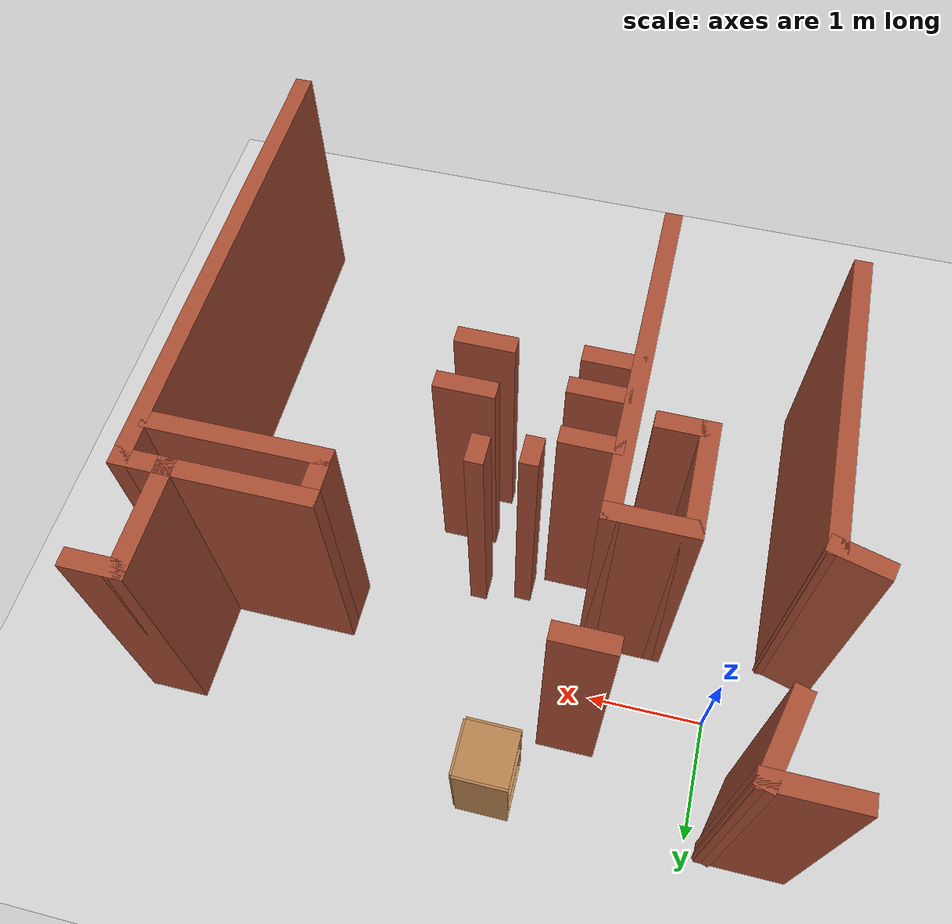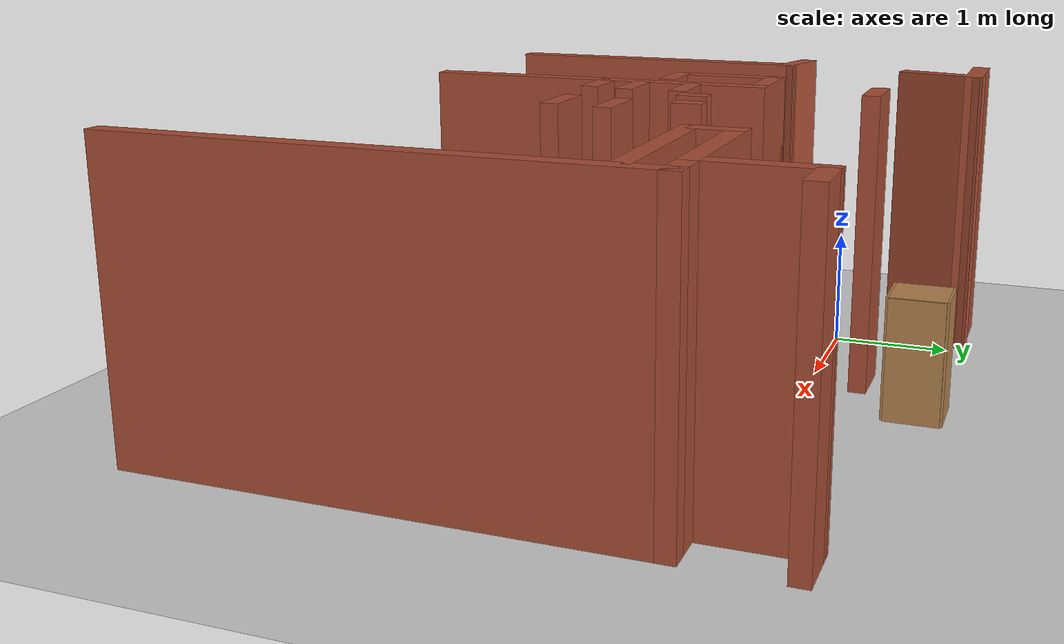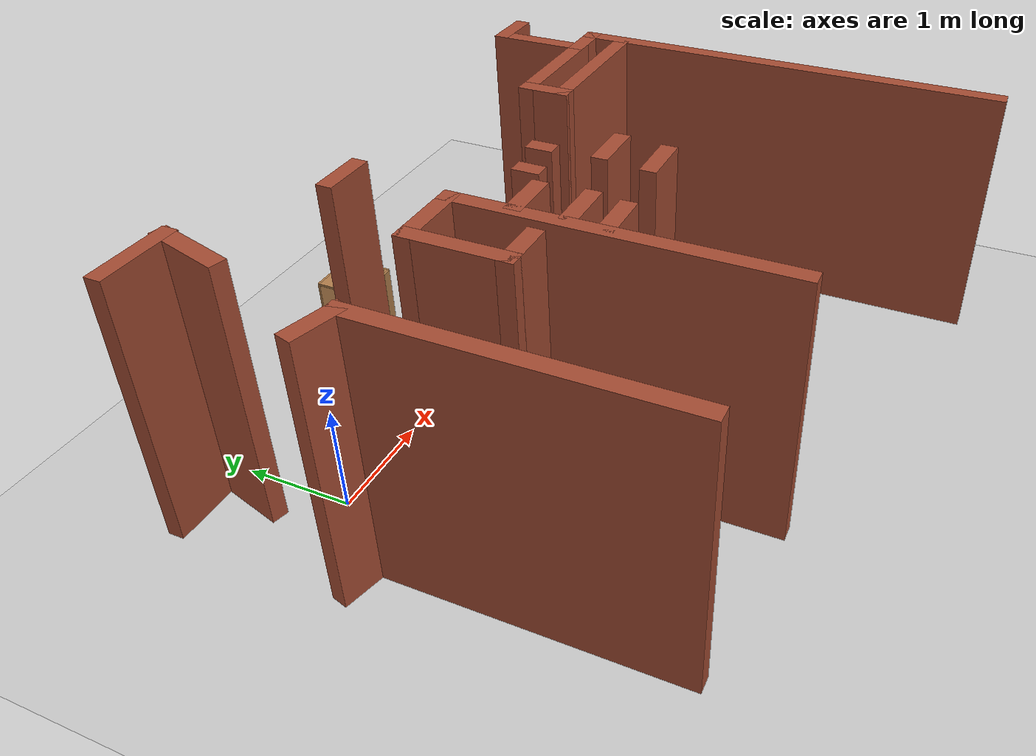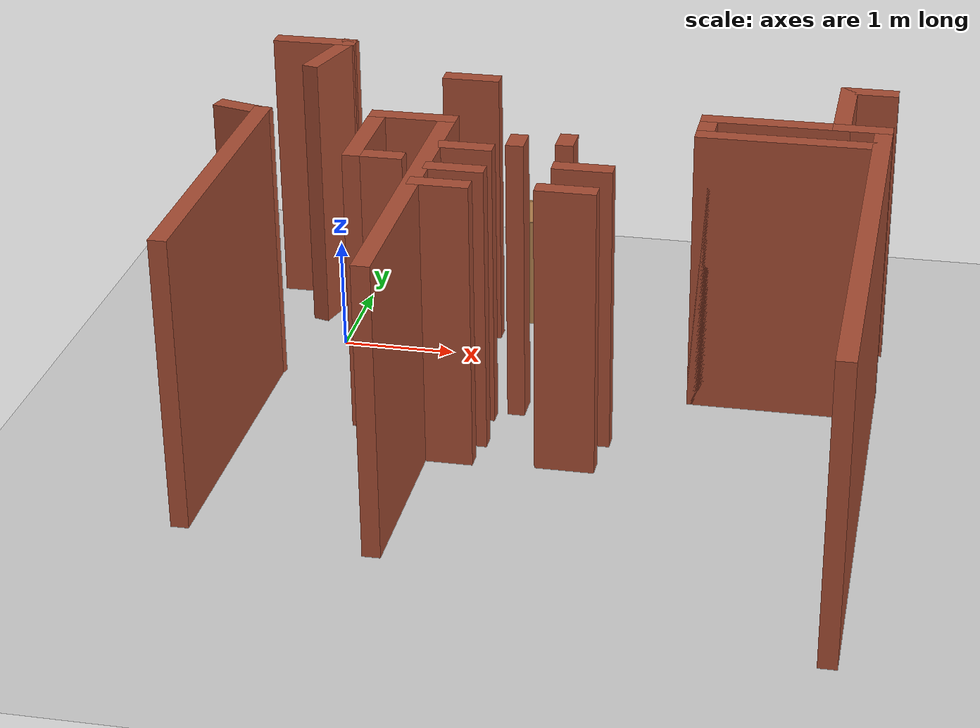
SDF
<sdf version="1.6">
 <world name="default">
  <model name="ground_plane">
   <static>1</static>
   <link name="link">
    <collision name="collision">
     <geometry><plane><normal>0 0 1</normal><size>100 100</size></plane></geometry>
     <surface><friction><ode><mu>100</mu><mu2>50</mu2></ode></friction></surface>
    </collision>
    <visual name="visual">
     <cast_shadows>0</cast_shadows>
     <geometry><plane><normal>0 0 1</normal><size>100 100</size></plane></geometry>
     <material>
      <script><uri>file://media/materials/scripts/gazebo.material</uri><name>Gazebo/Grey</name></script>
     </material>
    </visual>
   </link>
  </model>
  <model name="map_45">
   <link name="Wall_111">
    <pose>-0.040718 0.883638 0 0 -0 0</pose>
    <visual name="Wall_111_Visual">
     <pose>0 0 1.25 0 -0 0</pose>
     <geometry><box><size>0.75 0.15 2.5</size></box></geometry>
     <material>
      <script><uri>file://media/materials/scripts/gazebo.material</uri><name>Gazebo/Bricks</name></script>
      <ambient>1 1 1 1</ambient>
      <shader type="pixel"/>
     </material>
     <meta><layer>0</layer></meta>
    </visual>
    <collision name="Wall_111_Collision">
     <pose>0 0 1.25 0 -0 0</pose>
     <geometry><box><size>0.75 0.15 2.5</size></box></geometry>
     <surface>
      <friction>
       <ode><mu>1</mu><mu2>1</mu2><fdir1>0 0 0</fdir1><slip1>0</slip1><slip2>0</slip2></ode>
       <torsional>
        <coefficient>1</coefficient>
        <patch_radius>0</patch_radius>
        <surface_radius>0</surface_radius>
        <use_patch_radius>1</use_patch_radius>
        <ode><slip>0</slip></ode>
       </torsional>
      </friction>
      <bounce><restitution_coefficient>0</restitution_coefficient><threshold>1e+06</threshold></bounce>
      <contact>
       <collide_without_contact>0</collide_without_contact>
       <collide_without_contact_bitmask>1</collide_without_contact_bitmask>
       <collide_bitmask>1</collide_bitmask>
       <ode>
        <soft_cfm>0</soft_cfm>
        <soft_erp>0.2</soft_erp>
        <kp>1e+13</kp>
        <kd>1</kd>
        <max_vel>0.01</max_vel>
        <min_depth>0</min_depth>
       </ode>
       <bullet>
        <split_impulse>1</split_impulse>
        <split_impulse_penetration_threshold>-0.01</split_impulse_penetration_threshold>
        <soft_cfm>0</soft_cfm>
        <soft_erp>0.2</soft_erp>
        <kp>1e+13</kp>
        <kd>1</kd>
       </bullet>
      </contact>
     </surface>
    </collision>
   </link>
   <link name="Wall_112">
    <pose>0.181636 0.593861 0 0 0 -1.8326</pose>
    <visual name="Wall_112_Visual">
     <pose>0 0 1.25 0 -0 0</pose>
     <geometry><box><size>0.75 0.15 2.5</size></box></geometry>
     <material>
      <script><uri>file://media/materials/scripts/gazebo.material</uri><name>Gazebo/Bricks</name></script>
      <ambient>1 1 1 1</ambient>
      <shader type="pixel"/>
     </material>
     <meta><layer>0</layer></meta>
    </visual>
    <collision name="Wall_112_Collision">
     <pose>0 0 1.25 0 -0 0</pose>
     <geometry><box><size>0.75 0.15 2.5</size></box></geometry>
     <surface>
      <friction>
       <ode><mu>1</mu><mu2>1</mu2><fdir1>0 0 0</fdir1><slip1>0</slip1><slip2>0</slip2></ode>
       <torsional>
        <coefficient>1</coefficient>
        <patch_radius>0</patch_radius>
        <surface_radius>0</surface_radius>
        <use_patch_radius>1</use_patch_radius>
        <ode><slip>0</slip></ode>
       </torsional>
      </friction>
      <bounce><restitution_coefficient>0</restitution_coefficient><threshold>1e+06</threshold></bounce>
      <contact>
       <collide_without_contact>0</collide_without_contact>
       <collide_without_contact_bitmask>1</collide_without_contact_bitmask>
       <collide_bitmask>1</collide_bitmask>
       <ode>
        <soft_cfm>0</soft_cfm>
        <soft_erp>0.2</soft_erp>
        <kp>1e+13</kp>
        <kd>1</kd>
        <max_vel>0.01</max_vel>
        <min_depth>0</min_depth>
       </ode>
       <bullet>
        <split_impulse>1</split_impulse>
        <split_impulse_penetration_threshold>-0.01</split_impulse_penetration_threshold>
        <soft_cfm>0</soft_cfm>
        <soft_erp>0.2</soft_erp>
        <kp>1e+13</kp>
        <kd>1</kd>
       </bullet>
      </contact>
     </surface>
    </collision>
   </link>
   <link name="Wall_130">
    <pose>4.25883 -0.34269 0 0 -0 3.14159</pose>
    <visual name="Wall_130_Visual">
     <pose>0 0 1.25 0 -0 0</pose>
     <geometry><box><size>1.25 0.15 2.5</size></box></geometry>
     <material>
      <script><uri>file://media/materials/scripts/gazebo.material</uri><name>Gazebo/Bricks</name></script>
      <ambient>1 1 1 1</ambient>
      <shader type="pixel"/>
     </material>
     <meta><layer>0</layer></meta>
    </visual>
    <collision name="Wall_130_Collision">
     <pose>0 0 1.25 0 -0 0</pose>
     <geometry><box><size>1.25 0.15 2.5</size></box></geometry>
     <surface>
      <friction>
       <ode><mu>1</mu><mu2>1</mu2><fdir1>0 0 0</fdir1><slip1>0</slip1><slip2>0</slip2></ode>
       <torsional>
        <coefficient>1</coefficient>
        <patch_radius>0</patch_radius>
        <surface_radius>0</surface_radius>
        <use_patch_radius>1</use_patch_radius>
        <ode><slip>0</slip></ode>
       </torsional>
      </friction>
      <bounce><restitution_coefficient>0</restitution_coefficient><threshold>1e+06</threshold></bounce>
      <contact>
       <collide_without_contact>0</collide_without_contact>
       <collide_without_contact_bitmask>1</collide_without_contact_bitmask>
       <collide_bitmask>1</collide_bitmask>
       <ode>
        <soft_cfm>0</soft_cfm>
        <soft_erp>0.2</soft_erp>
        <kp>1e+13</kp>
        <kd>1</kd>
        <max_vel>0.01</max_vel>
        <min_depth>0</min_depth>
       </ode>
       <bullet>
        <split_impulse>1</split_impulse>
        <split_impulse_penetration_threshold>-0.01</split_impulse_penetration_threshold>
        <soft_cfm>0</soft_cfm>
        <soft_erp>0.2</soft_erp>
        <kp>1e+13</kp>
        <kd>1</kd>
       </bullet>
      </contact>
     </surface>
    </collision>
   </link>
   <link name="Wall_131">
    <pose>3.70883 -0.51769 0 0 0 -1.5708</pose>
    <visual name="Wall_131_Visual">
     <pose>0 0 1.25 0 -0 0</pose>
     <geometry><box><size>0.5 0.15 2.5</size></box></geometry>
     <material>
      <script><uri>file://media/materials/scripts/gazebo.material</uri><name>Gazebo/Bricks</name></script>
      <ambient>1 1 1 1</ambient>
      <shader type="pixel"/>
     </material>
     <meta><layer>0</layer></meta>
    </visual>
    <collision name="Wall_131_Collision">
     <pose>0 0 1.25 0 -0 0</pose>
     <geometry><box><size>0.5 0.15 2.5</size></box></geometry>
     <surface>
      <friction>
       <ode><mu>1</mu><mu2>1</mu2><fdir1>0 0 0</fdir1><slip1>0</slip1><slip2>0</slip2></ode>
       <torsional>
        <coefficient>1</coefficient>
        <patch_radius>0</patch_radius>
        <surface_radius>0</surface_radius>
        <use_patch_radius>1</use_patch_radius>
        <ode><slip>0</slip></ode>
       </torsional>
      </friction>
      <bounce><restitution_coefficient>0</restitution_coefficient><threshold>1e+06</threshold></bounce>
      <contact>
       <collide_without_contact>0</collide_without_contact>
       <collide_without_contact_bitmask>1</collide_without_contact_bitmask>
       <collide_bitmask>1</collide_bitmask>
       <ode>
        <soft_cfm>0</soft_cfm>
        <soft_erp>0.2</soft_erp>
        <kp>1e+13</kp>
        <kd>1</kd>
        <max_vel>0.01</max_vel>
        <min_depth>0</min_depth>
       </ode>
       <bullet>
        <split_impulse>1</split_impulse>
        <split_impulse_penetration_threshold>-0.01</split_impulse_penetration_threshold>
        <soft_cfm>0</soft_cfm>
        <soft_erp>0.2</soft_erp>
        <kp>1e+13</kp>
        <kd>1</kd>
       </bullet>
      </contact>
     </surface>
    </collision>
   </link>
   <link name="Wall_132">
    <pose>4.38383 -0.69269 0 0 -0 0</pose>
    <visual name="Wall_132_Visual">
     <pose>0 0 1.25 0 -0 0</pose>
     <geometry><box><size>1.5 0.15 2.5</size></box></geometry>
     <material>
      <script><uri>file://media/materials/scripts/gazebo.material</uri><name>Gazebo/Bricks</name></script>
      <ambient>1 1 1 1</ambient>
      <shader type="pixel"/>
     </material>
     <meta><layer>0</layer></meta>
    </visual>
    <collision name="Wall_132_Collision">
     <pose>0 0 1.25 0 -0 0</pose>
     <geometry><box><size>1.5 0.15 2.5</size></box></geometry>
     <surface>
      <friction>
       <ode><mu>1</mu><mu2>1</mu2><fdir1>0 0 0</fdir1><slip1>0</slip1><slip2>0</slip2></ode>
       <torsional>
        <coefficient>1</coefficient>
        <patch_radius>0</patch_radius>
        <surface_radius>0</surface_radius>
        <use_patch_radius>1</use_patch_radius>
        <ode><slip>0</slip></ode>
       </torsional>
      </friction>
      <bounce><restitution_coefficient>0</restitution_coefficient><threshold>1e+06</threshold></bounce>
      <contact>
       <collide_without_contact>0</collide_without_contact>
       <collide_without_contact_bitmask>1</collide_without_contact_bitmask>
       <collide_bitmask>1</collide_bitmask>
       <ode>
        <soft_cfm>0</soft_cfm>
        <soft_erp>0.2</soft_erp>
        <kp>1e+13</kp>
        <kd>1</kd>
        <max_vel>0.01</max_vel>
        <min_depth>0</min_depth>
       </ode>
       <bullet>
        <split_impulse>1</split_impulse>
        <split_impulse_penetration_threshold>-0.01</split_impulse_penetration_threshold>
        <soft_cfm>0</soft_cfm>
        <soft_erp>0.2</soft_erp>
        <kp>1e+13</kp>
        <kd>1</kd>
       </bullet>
      </contact>
     </surface>
    </collision>
   </link>
   <link name="Wall_134">
    <pose>1.80767 -1.29266 0 0 -0 0</pose>
    <visual name="Wall_134_Visual">
     <pose>0 0 1.25 0 -0 0</pose>
     <geometry><box><size>0.5 0.15 2.5</size></box></geometry>
     <material>
      <script><uri>file://media/materials/scripts/gazebo.material</uri><name>Gazebo/Bricks</name></script>
      <ambient>1 1 1 1</ambient>
      <shader type="pixel"/>
     </material>
     <meta><layer>0</layer></meta>
    </visual>
    <collision name="Wall_134_Collision">
     <pose>0 0 1.25 0 -0 0</pose>
     <geometry><box><size>0.5 0.15 2.5</size></box></geometry>
     <surface>
      <friction>
       <ode><mu>1</mu><mu2>1</mu2><fdir1>0 0 0</fdir1><slip1>0</slip1><slip2>0</slip2></ode>
       <torsional>
        <coefficient>1</coefficient>
        <patch_radius>0</patch_radius>
        <surface_radius>0</surface_radius>
        <use_patch_radius>1</use_patch_radius>
        <ode><slip>0</slip></ode>
       </torsional>
      </friction>
      <bounce><restitution_coefficient>0</restitution_coefficient><threshold>1e+06</threshold></bounce>
      <contact>
       <collide_without_contact>0</collide_without_contact>
       <collide_without_contact_bitmask>1</collide_without_contact_bitmask>
       <collide_bitmask>1</collide_bitmask>
       <ode>
        <soft_cfm>0</soft_cfm>
        <soft_erp>0.2</soft_erp>
        <kp>1e+13</kp>
        <kd>1</kd>
        <max_vel>0.01</max_vel>
        <min_depth>0</min_depth>
       </ode>
       <bullet>
        <split_impulse>1</split_impulse>
        <split_impulse_penetration_threshold>-0.01</split_impulse_penetration_threshold>
        <soft_cfm>0</soft_cfm>
        <soft_erp>0.2</soft_erp>
        <kp>1e+13</kp>
        <kd>1</kd>
       </bullet>
      </contact>
     </surface>
    </collision>
   </link>
   <link name="Wall_136">
    <pose>1.83427 -1.74486 0 0 -0 0</pose>
    <visual name="Wall_136_Visual">
     <pose>0 0 1.25 0 -0 0</pose>
     <geometry><box><size>0.5 0.15 2.5</size></box></geometry>
     <material>
      <script><uri>file://media/materials/scripts/gazebo.material</uri><name>Gazebo/Bricks</name></script>
      <ambient>1 1 1 1</ambient>
      <shader type="pixel"/>
     </material>
     <meta><layer>0</layer></meta>
    </visual>
    <collision name="Wall_136_Collision">
     <pose>0 0 1.25 0 -0 0</pose>
     <geometry><box><size>0.5 0.15 2.5</size></box></geometry>
     <surface>
      <friction>
       <ode><mu>1</mu><mu2>1</mu2><fdir1>0 0 0</fdir1><slip1>0</slip1><slip2>0</slip2></ode>
       <torsional>
        <coefficient>1</coefficient>
        <patch_radius>0</patch_radius>
        <surface_radius>0</surface_radius>
        <use_patch_radius>1</use_patch_radius>
        <ode><slip>0</slip></ode>
       </torsional>
      </friction>
      <bounce><restitution_coefficient>0</restitution_coefficient><threshold>1e+06</threshold></bounce>
      <contact>
       <collide_without_contact>0</collide_without_contact>
       <collide_without_contact_bitmask>1</collide_without_contact_bitmask>
       <collide_bitmask>1</collide_bitmask>
       <ode>
        <soft_cfm>0</soft_cfm>
        <soft_erp>0.2</soft_erp>
        <kp>1e+13</kp>
        <kd>1</kd>
        <max_vel>0.01</max_vel>
        <min_depth>0</min_depth>
       </ode>
       <bullet>
        <split_impulse>1</split_impulse>
        <split_impulse_penetration_threshold>-0.01</split_impulse_penetration_threshold>
        <soft_cfm>0</soft_cfm>
        <soft_erp>0.2</soft_erp>
        <kp>1e+13</kp>
        <kd>1</kd>
       </bullet>
      </contact>
     </surface>
    </collision>
   </link>
   <link name="Wall_138">
    <pose>1.78107 -2.06406 0 0 -0 0</pose>
    <visual name="Wall_138_Visual">
     <pose>0 0 1.25 0 -0 0</pose>
     <geometry><box><size>0.5 0.15 2.5</size></box></geometry>
     <material>
      <script><uri>file://media/materials/scripts/gazebo.material</uri><name>Gazebo/Bricks</name></script>
      <ambient>1 1 1 1</ambient>
      <shader type="pixel"/>
     </material>
     <meta><layer>0</layer></meta>
    </visual>
    <collision name="Wall_138_Collision">
     <pose>0 0 1.25 0 -0 0</pose>
     <geometry><box><size>0.5 0.15 2.5</size></box></geometry>
     <surface>
      <friction>
       <ode><mu>1</mu><mu2>1</mu2><fdir1>0 0 0</fdir1><slip1>0</slip1><slip2>0</slip2></ode>
       <torsional>
        <coefficient>1</coefficient>
        <patch_radius>0</patch_radius>
        <surface_radius>0</surface_radius>
        <use_patch_radius>1</use_patch_radius>
        <ode><slip>0</slip></ode>
       </torsional>
      </friction>
      <bounce><restitution_coefficient>0</restitution_coefficient><threshold>1e+06</threshold></bounce>
      <contact>
       <collide_without_contact>0</collide_without_contact>
       <collide_without_contact_bitmask>1</collide_without_contact_bitmask>
       <collide_bitmask>1</collide_bitmask>
       <ode>
        <soft_cfm>0</soft_cfm>
        <soft_erp>0.2</soft_erp>
        <kp>1e+13</kp>
        <kd>1</kd>
        <max_vel>0.01</max_vel>
        <min_depth>0</min_depth>
       </ode>
       <bullet>
        <split_impulse>1</split_impulse>
        <split_impulse_penetration_threshold>-0.01</split_impulse_penetration_threshold>
        <soft_cfm>0</soft_cfm>
        <soft_erp>0.2</soft_erp>
        <kp>1e+13</kp>
        <kd>1</kd>
       </bullet>
      </contact>
     </surface>
    </collision>
   </link>
   <link name="Wall_144">
    <pose>2.79188 -2.01086 0 0 -0 0</pose>
    <visual name="Wall_144_Visual">
     <pose>0 0 1.25 0 -0 0</pose>
     <geometry><box><size>0.5 0.15 2.5</size></box></geometry>
     <material>
      <script><uri>file://media/materials/scripts/gazebo.material</uri><name>Gazebo/Bricks</name></script>
      <ambient>1 1 1 1</ambient>
      <shader type="pixel"/>
     </material>
     <meta><layer>0</layer></meta>
    </visual>
    <collision name="Wall_144_Collision">
     <pose>0 0 1.25 0 -0 0</pose>
     <geometry><box><size>0.5 0.15 2.5</size></box></geometry>
     <surface>
      <friction>
       <ode><mu>1</mu><mu2>1</mu2><fdir1>0 0 0</fdir1><slip1>0</slip1><slip2>0</slip2></ode>
       <torsional>
        <coefficient>1</coefficient>
        <patch_radius>0</patch_radius>
        <surface_radius>0</surface_radius>
        <use_patch_radius>1</use_patch_radius>
        <ode><slip>0</slip></ode>
       </torsional>
      </friction>
      <bounce><restitution_coefficient>0</restitution_coefficient><threshold>1e+06</threshold></bounce>
      <contact>
       <collide_without_contact>0</collide_without_contact>
       <collide_without_contact_bitmask>1</collide_without_contact_bitmask>
       <collide_bitmask>1</collide_bitmask>
       <ode>
        <soft_cfm>0</soft_cfm>
        <soft_erp>0.2</soft_erp>
        <kp>1e+13</kp>
        <kd>1</kd>
        <max_vel>0.01</max_vel>
        <min_depth>0</min_depth>
       </ode>
       <bullet>
        <split_impulse>1</split_impulse>
        <split_impulse_penetration_threshold>-0.01</split_impulse_penetration_threshold>
        <soft_cfm>0</soft_cfm>
        <soft_erp>0.2</soft_erp>
        <kp>1e+13</kp>
        <kd>1</kd>
       </bullet>
      </contact>
     </surface>
    </collision>
   </link>
   <link name="Wall_146">
    <pose>2.84508 -1.55866 0 0 -0 0</pose>
    <visual name="Wall_146_Visual">
     <pose>0 0 1.25 0 -0 0</pose>
     <geometry><box><size>0.5 0.15 2.5</size></box></geometry>
     <material>
      <script><uri>file://media/materials/scripts/gazebo.material</uri><name>Gazebo/Bricks</name></script>
      <ambient>1 1 1 1</ambient>
      <shader type="pixel"/>
     </material>
     <meta><layer>0</layer></meta>
    </visual>
    <collision name="Wall_146_Collision">
     <pose>0 0 1.25 0 -0 0</pose>
     <geometry><box><size>0.5 0.15 2.5</size></box></geometry>
     <surface>
      <friction>
       <ode><mu>1</mu><mu2>1</mu2><fdir1>0 0 0</fdir1><slip1>0</slip1><slip2>0</slip2></ode>
       <torsional>
        <coefficient>1</coefficient>
        <patch_radius>0</patch_radius>
        <surface_radius>0</surface_radius>
        <use_patch_radius>1</use_patch_radius>
        <ode><slip>0</slip></ode>
       </torsional>
      </friction>
      <bounce><restitution_coefficient>0</restitution_coefficient><threshold>1e+06</threshold></bounce>
      <contact>
       <collide_without_contact>0</collide_without_contact>
       <collide_without_contact_bitmask>1</collide_without_contact_bitmask>
       <collide_bitmask>1</collide_bitmask>
       <ode>
        <soft_cfm>0</soft_cfm>
        <soft_erp>0.2</soft_erp>
        <kp>1e+13</kp>
        <kd>1</kd>
        <max_vel>0.01</max_vel>
        <min_depth>0</min_depth>
       </ode>
       <bullet>
        <split_impulse>1</split_impulse>
        <split_impulse_penetration_threshold>-0.01</split_impulse_penetration_threshold>
        <soft_cfm>0</soft_cfm>
        <soft_erp>0.2</soft_erp>
        <kp>1e+13</kp>
        <kd>1</kd>
       </bullet>
      </contact>
     </surface>
    </collision>
   </link>
   <link name="Wall_148">
    <pose>2.21787 -1.10325 0 0 0 -1.5708</pose>
    <visual name="Wall_148_Visual">
     <pose>0 0 1.25 0 -0 0</pose>
     <geometry><box><size>0.25 0.15 2.5</size></box></geometry>
     <material>
      <script><uri>file://media/materials/scripts/gazebo.material</uri><name>Gazebo/Bricks</name></script>
      <ambient>1 1 1 1</ambient>
      <shader type="pixel"/>
     </material>
     <meta><layer>0</layer></meta>
    </visual>
    <collision name="Wall_148_Collision">
     <pose>0 0 1.25 0 -0 0</pose>
     <geometry><box><size>0.25 0.15 2.5</size></box></geometry>
     <surface>
      <friction>
       <ode><mu>1</mu><mu2>1</mu2><fdir1>0 0 0</fdir1><slip1>0</slip1><slip2>0</slip2></ode>
       <torsional>
        <coefficient>1</coefficient>
        <patch_radius>0</patch_radius>
        <surface_radius>0</surface_radius>
        <use_patch_radius>1</use_patch_radius>
        <ode><slip>0</slip></ode>
       </torsional>
      </friction>
      <bounce><restitution_coefficient>0</restitution_coefficient><threshold>1e+06</threshold></bounce>
      <contact>
       <collide_without_contact>0</collide_without_contact>
       <collide_without_contact_bitmask>1</collide_without_contact_bitmask>
       <collide_bitmask>1</collide_bitmask>
       <ode>
        <soft_cfm>0</soft_cfm>
        <soft_erp>0.2</soft_erp>
        <kp>1e+13</kp>
        <kd>1</kd>
        <max_vel>0.01</max_vel>
        <min_depth>0</min_depth>
       </ode>
       <bullet>
        <split_impulse>1</split_impulse>
        <split_impulse_penetration_threshold>-0.01</split_impulse_penetration_threshold>
        <soft_cfm>0</soft_cfm>
        <soft_erp>0.2</soft_erp>
        <kp>1e+13</kp>
        <kd>1</kd>
       </bullet>
      </contact>
     </surface>
    </collision>
   </link>
   <link name="Wall_150">
    <pose>2.61688 -1.02345 0 0 0 -1.5708</pose>
    <visual name="Wall_150_Visual">
     <pose>0 0 1.25 0 -0 0</pose>
     <geometry><box><size>0.25 0.15 2.5</size></box></geometry>
     <material>
      <script><uri>file://media/materials/scripts/gazebo.material</uri><name>Gazebo/Bricks</name></script>
      <ambient>1 1 1 1</ambient>
      <shader type="pixel"/>
     </material>
     <meta><layer>0</layer></meta>
    </visual>
    <collision name="Wall_150_Collision">
     <pose>0 0 1.25 0 -0 0</pose>
     <geometry><box><size>0.25 0.15 2.5</size></box></geometry>
     <surface>
      <friction>
       <ode><mu>1</mu><mu2>1</mu2><fdir1>0 0 0</fdir1><slip1>0</slip1><slip2>0</slip2></ode>
       <torsional>
        <coefficient>1</coefficient>
        <patch_radius>0</patch_radius>
        <surface_radius>0</surface_radius>
        <use_patch_radius>1</use_patch_radius>
        <ode><slip>0</slip></ode>
       </torsional>
      </friction>
      <bounce><restitution_coefficient>0</restitution_coefficient><threshold>1e+06</threshold></bounce>
      <contact>
       <collide_without_contact>0</collide_without_contact>
       <collide_without_contact_bitmask>1</collide_without_contact_bitmask>
       <collide_bitmask>1</collide_bitmask>
       <ode>
        <soft_cfm>0</soft_cfm>
        <soft_erp>0.2</soft_erp>
        <kp>1e+13</kp>
        <kd>1</kd>
        <max_vel>0.01</max_vel>
        <min_depth>0</min_depth>
       </ode>
       <bullet>
        <split_impulse>1</split_impulse>
        <split_impulse_penetration_threshold>-0.01</split_impulse_penetration_threshold>
        <soft_cfm>0</soft_cfm>
        <soft_erp>0.2</soft_erp>
        <kp>1e+13</kp>
        <kd>1</kd>
       </bullet>
      </contact>
     </surface>
    </collision>
   </link>
   <link name="Wall_41">
    <pose>-0.210203 -0.797397 0 0 0 -0.261799</pose>
    <visual name="Wall_41_Visual">
     <pose>0 0 1.25 0 -0 0</pose>
     <geometry><box><size>0.5 0.15 2.5</size></box></geometry>
     <material>
      <script><uri>file://media/materials/scripts/gazebo.material</uri><name>Gazebo/Bricks</name></script>
      <ambient>1 1 1 1</ambient>
      <shader type="pixel"/>
     </material>
     <meta><layer>0</layer></meta>
    </visual>
    <collision name="Wall_41_Collision">
     <pose>0 0 1.25 0 -0 0</pose>
     <geometry><box><size>0.5 0.15 2.5</size></box></geometry>
     <surface>
      <friction>
       <ode><mu>1</mu><mu2>1</mu2><fdir1>0 0 0</fdir1><slip1>0</slip1><slip2>0</slip2></ode>
       <torsional>
        <coefficient>1</coefficient>
        <patch_radius>0</patch_radius>
        <surface_radius>0</surface_radius>
        <use_patch_radius>1</use_patch_radius>
        <ode><slip>0</slip></ode>
       </torsional>
      </friction>
      <bounce><restitution_coefficient>0</restitution_coefficient><threshold>1e+06</threshold></bounce>
      <contact>
       <collide_without_contact>0</collide_without_contact>
       <collide_without_contact_bitmask>1</collide_without_contact_bitmask>
       <collide_bitmask>1</collide_bitmask>
       <ode>
        <soft_cfm>0</soft_cfm>
        <soft_erp>0.2</soft_erp>
        <kp>1e+13</kp>
        <kd>1</kd>
        <max_vel>0.01</max_vel>
        <min_depth>0</min_depth>
       </ode>
       <bullet>
        <split_impulse>1</split_impulse>
        <split_impulse_penetration_threshold>-0.01</split_impulse_penetration_threshold>
        <soft_cfm>0</soft_cfm>
        <soft_erp>0.2</soft_erp>
        <kp>1e+13</kp>
        <kd>1</kd>
       </bullet>
      </contact>
     </surface>
    </collision>
   </link>
   <link name="Wall_42">
    <pose>-0.041166 -2.14269 0 0 0 -1.5708</pose>
    <visual name="Wall_42_Visual">
     <pose>0 0 1.25 0 -0 0</pose>
     <geometry><box><size>2.75 0.15 2.5</size></box></geometry>
     <material>
      <script><uri>file://media/materials/scripts/gazebo.material</uri><name>Gazebo/Bricks</name></script>
      <ambient>1 1 1 1</ambient>
      <shader type="pixel"/>
     </material>
     <meta><layer>0</layer></meta>
    </visual>
    <collision name="Wall_42_Collision">
     <pose>0 0 1.25 0 -0 0</pose>
     <geometry><box><size>2.75 0.15 2.5</size></box></geometry>
     <surface>
      <friction>
       <ode><mu>1</mu><mu2>1</mu2><fdir1>0 0 0</fdir1><slip1>0</slip1><slip2>0</slip2></ode>
       <torsional>
        <coefficient>1</coefficient>
        <patch_radius>0</patch_radius>
        <surface_radius>0</surface_radius>
        <use_patch_radius>1</use_patch_radius>
        <ode><slip>0</slip></ode>
       </torsional>
      </friction>
      <bounce><restitution_coefficient>0</restitution_coefficient><threshold>1e+06</threshold></bounce>
      <contact>
       <collide_without_contact>0</collide_without_contact>
       <collide_without_contact_bitmask>1</collide_without_contact_bitmask>
       <collide_bitmask>1</collide_bitmask>
       <ode>
        <soft_cfm>0</soft_cfm>
        <soft_erp>0.2</soft_erp>
        <kp>1e+13</kp>
        <kd>1</kd>
        <max_vel>0.01</max_vel>
        <min_depth>0</min_depth>
       </ode>
       <bullet>
        <split_impulse>1</split_impulse>
        <split_impulse_penetration_threshold>-0.01</split_impulse_penetration_threshold>
        <soft_cfm>0</soft_cfm>
        <soft_erp>0.2</soft_erp>
        <kp>1e+13</kp>
        <kd>1</kd>
       </bullet>
      </contact>
     </surface>
    </collision>
   </link>
   <link name="Wall_47">
    <pose>1.13383 -1.59269 0 0 -0 3.14159</pose>
    <visual name="Wall_47_Visual">
     <pose>0 0 1.25 0 -0 0</pose>
     <geometry><box><size>0.5 0.15 2.5</size></box></geometry>
     <material>
      <script><uri>file://media/materials/scripts/gazebo.material</uri><name>Gazebo/Bricks</name></script>
      <ambient>1 1 1 1</ambient>
      <shader type="pixel"/>
     </material>
     <meta><layer>0</layer></meta>
    </visual>
    <collision name="Wall_47_Collision">
     <pose>0 0 1.25 0 -0 0</pose>
     <geometry><box><size>0.5 0.15 2.5</size></box></geometry>
     <surface>
      <friction>
       <ode><mu>1</mu><mu2>1</mu2><fdir1>0 0 0</fdir1><slip1>0</slip1><slip2>0</slip2></ode>
       <torsional>
        <coefficient>1</coefficient>
        <patch_radius>0</patch_radius>
        <surface_radius>0</surface_radius>
        <use_patch_radius>1</use_patch_radius>
        <ode><slip>0</slip></ode>
       </torsional>
      </friction>
      <bounce><restitution_coefficient>0</restitution_coefficient><threshold>1e+06</threshold></bounce>
      <contact>
       <collide_without_contact>0</collide_without_contact>
       <collide_without_contact_bitmask>1</collide_without_contact_bitmask>
       <collide_bitmask>1</collide_bitmask>
       <ode>
        <soft_cfm>0</soft_cfm>
        <soft_erp>0.2</soft_erp>
        <kp>1e+13</kp>
        <kd>1</kd>
        <max_vel>0.01</max_vel>
        <min_depth>0</min_depth>
       </ode>
       <bullet>
        <split_impulse>1</split_impulse>
        <split_impulse_penetration_threshold>-0.01</split_impulse_penetration_threshold>
        <soft_cfm>0</soft_cfm>
        <soft_erp>0.2</soft_erp>
        <kp>1e+13</kp>
        <kd>1</kd>
       </bullet>
      </contact>
     </surface>
    </collision>
   </link>
   <link name="Wall_48">
    <pose>0.958834 -1.16769 0 0 -0 1.5708</pose>
    <visual name="Wall_48_Visual">
     <pose>0 0 1.25 0 -0 0</pose>
     <geometry><box><size>1 0.15 2.5</size></box></geometry>
     <material>
      <script><uri>file://media/materials/scripts/gazebo.material</uri><name>Gazebo/Bricks</name></script>
      <ambient>1 1 1 1</ambient>
      <shader type="pixel"/>
     </material>
     <meta><layer>0</layer></meta>
    </visual>
    <collision name="Wall_48_Collision">
     <pose>0 0 1.25 0 -0 0</pose>
     <geometry><box><size>1 0.15 2.5</size></box></geometry>
     <surface>
      <friction>
       <ode><mu>1</mu><mu2>1</mu2><fdir1>0 0 0</fdir1><slip1>0</slip1><slip2>0</slip2></ode>
       <torsional>
        <coefficient>1</coefficient>
        <patch_radius>0</patch_radius>
        <surface_radius>0</surface_radius>
        <use_patch_radius>1</use_patch_radius>
        <ode><slip>0</slip></ode>
       </torsional>
      </friction>
      <bounce><restitution_coefficient>0</restitution_coefficient><threshold>1e+06</threshold></bounce>
      <contact>
       <collide_without_contact>0</collide_without_contact>
       <collide_without_contact_bitmask>1</collide_without_contact_bitmask>
       <collide_bitmask>1</collide_bitmask>
       <ode>
        <soft_cfm>0</soft_cfm>
        <soft_erp>0.2</soft_erp>
        <kp>1e+13</kp>
        <kd>1</kd>
        <max_vel>0.01</max_vel>
        <min_depth>0</min_depth>
       </ode>
       <bullet>
        <split_impulse>1</split_impulse>
        <split_impulse_penetration_threshold>-0.01</split_impulse_penetration_threshold>
        <soft_cfm>0</soft_cfm>
        <soft_erp>0.2</soft_erp>
        <kp>1e+13</kp>
        <kd>1</kd>
       </bullet>
      </contact>
     </surface>
    </collision>
   </link>
   <link name="Wall_49">
    <pose>1.25883 -0.74269 0 0 -0 0</pose>
    <visual name="Wall_49_Visual">
     <pose>0 0 1.25 0 -0 0</pose>
     <geometry><box><size>0.75 0.15 2.5</size></box></geometry>
     <material>
      <script><uri>file://media/materials/scripts/gazebo.material</uri><name>Gazebo/Bricks</name></script>
      <ambient>1 1 1 1</ambient>
      <shader type="pixel"/>
     </material>
     <meta><layer>0</layer></meta>
    </visual>
    <collision name="Wall_49_Collision">
     <pose>0 0 1.25 0 -0 0</pose>
     <geometry><box><size>0.75 0.15 2.5</size></box></geometry>
     <surface>
      <friction>
       <ode><mu>1</mu><mu2>1</mu2><fdir1>0 0 0</fdir1><slip1>0</slip1><slip2>0</slip2></ode>
       <torsional>
        <coefficient>1</coefficient>
        <patch_radius>0</patch_radius>
        <surface_radius>0</surface_radius>
        <use_patch_radius>1</use_patch_radius>
        <ode><slip>0</slip></ode>
       </torsional>
      </friction>
      <bounce><restitution_coefficient>0</restitution_coefficient><threshold>1e+06</threshold></bounce>
      <contact>
       <collide_without_contact>0</collide_without_contact>
       <collide_without_contact_bitmask>1</collide_without_contact_bitmask>
       <collide_bitmask>1</collide_bitmask>
       <ode>
        <soft_cfm>0</soft_cfm>
        <soft_erp>0.2</soft_erp>
        <kp>1e+13</kp>
        <kd>1</kd>
        <max_vel>0.01</max_vel>
        <min_depth>0</min_depth>
       </ode>
       <bullet>
        <split_impulse>1</split_impulse>
        <split_impulse_penetration_threshold>-0.01</split_impulse_penetration_threshold>
        <soft_cfm>0</soft_cfm>
        <soft_erp>0.2</soft_erp>
        <kp>1e+13</kp>
        <kd>1</kd>
       </bullet>
      </contact>
     </surface>
    </collision>
   </link>
   <link name="Wall_50">
    <pose>1.55883 -2.16769 0 0 0 -1.5708</pose>
    <visual name="Wall_50_Visual">
     <pose>0 0 1.25 0 -0 0</pose>
     <geometry><box><size>3 0.15 2.5</size></box></geometry>
     <material>
      <script><uri>file://media/materials/scripts/gazebo.material</uri><name>Gazebo/Bricks</name></script>
      <ambient>1 1 1 1</ambient>
      <shader type="pixel"/>
     </material>
     <meta><layer>0</layer></meta>
    </visual>
    <collision name="Wall_50_Collision">
     <pose>0 0 1.25 0 -0 0</pose>
     <geometry><box><size>3 0.15 2.5</size></box></geometry>
     <surface>
      <friction>
       <ode><mu>1</mu><mu2>1</mu2><fdir1>0 0 0</fdir1><slip1>0</slip1><slip2>0</slip2></ode>
       <torsional>
        <coefficient>1</coefficient>
        <patch_radius>0</patch_radius>
        <surface_radius>0</surface_radius>
        <use_patch_radius>1</use_patch_radius>
        <ode><slip>0</slip></ode>
       </torsional>
      </friction>
      <bounce><restitution_coefficient>0</restitution_coefficient><threshold>1e+06</threshold></bounce>
      <contact>
       <collide_without_contact>0</collide_without_contact>
       <collide_without_contact_bitmask>1</collide_without_contact_bitmask>
       <collide_bitmask>1</collide_bitmask>
       <ode>
        <soft_cfm>0</soft_cfm>
        <soft_erp>0.2</soft_erp>
        <kp>1e+13</kp>
        <kd>1</kd>
        <max_vel>0.01</max_vel>
        <min_depth>0</min_depth>
       </ode>
       <bullet>
        <split_impulse>1</split_impulse>
        <split_impulse_penetration_threshold>-0.01</split_impulse_penetration_threshold>
        <soft_cfm>0</soft_cfm>
        <soft_erp>0.2</soft_erp>
        <kp>1e+13</kp>
        <kd>1</kd>
       </bullet>
      </contact>
     </surface>
    </collision>
   </link>
   <link name="Wall_70">
    <pose>5.15883 -2.39269 0 0 -0 1.5708</pose>
    <visual name="Wall_70_Visual">
     <pose>0 0 1.25 0 -0 0</pose>
     <geometry><box><size>4.25 0.15 2.5</size></box></geometry>
     <material>
      <script><uri>file://media/materials/scripts/gazebo.material</uri><name>Gazebo/Bricks</name></script>
      <ambient>1 1 1 1</ambient>
      <shader type="pixel"/>
     </material>
     <meta><layer>0</layer></meta>
    </visual>
    <collision name="Wall_70_Collision">
     <pose>0 0 1.25 0 -0 0</pose>
     <geometry><box><size>4.25 0.15 2.5</size></box></geometry>
     <surface>
      <friction>
       <ode><mu>1</mu><mu2>1</mu2><fdir1>0 0 0</fdir1><slip1>0</slip1><slip2>0</slip2></ode>
       <torsional>
        <coefficient>1</coefficient>
        <patch_radius>0</patch_radius>
        <surface_radius>0</surface_radius>
        <use_patch_radius>1</use_patch_radius>
        <ode><slip>0</slip></ode>
       </torsional>
      </friction>
      <bounce><restitution_coefficient>0</restitution_coefficient><threshold>1e+06</threshold></bounce>
      <contact>
       <collide_without_contact>0</collide_without_contact>
       <collide_without_contact_bitmask>1</collide_without_contact_bitmask>
       <collide_bitmask>1</collide_bitmask>
       <ode>
        <soft_cfm>0</soft_cfm>
        <soft_erp>0.2</soft_erp>
        <kp>1e+13</kp>
        <kd>1</kd>
        <max_vel>0.01</max_vel>
        <min_depth>0</min_depth>
       </ode>
       <bullet>
        <split_impulse>1</split_impulse>
        <split_impulse_penetration_threshold>-0.01</split_impulse_penetration_threshold>
        <soft_cfm>0</soft_cfm>
        <soft_erp>0.2</soft_erp>
        <kp>1e+13</kp>
        <kd>1</kd>
       </bullet>
      </contact>
     </surface>
    </collision>
   </link>
   <link name="Wall_71">
    <pose>4.98383 -0.34269 0 0 -0 3.14159</pose>
    <visual name="Wall_71_Visual">
     <pose>0 0 1.25 0 -0 0</pose>
     <geometry><box><size>0.5 0.15 2.5</size></box></geometry>
     <material>
      <script><uri>file://media/materials/scripts/gazebo.material</uri><name>Gazebo/Bricks</name></script>
      <ambient>1 1 1 1</ambient>
      <shader type="pixel"/>
     </material>
     <meta><layer>0</layer></meta>
    </visual>
    <collision name="Wall_71_Collision">
     <pose>0 0 1.25 0 -0 0</pose>
     <geometry><box><size>0.5 0.15 2.5</size></box></geometry>
     <surface>
      <friction>
       <ode><mu>1</mu><mu2>1</mu2><fdir1>0 0 0</fdir1><slip1>0</slip1><slip2>0</slip2></ode>
       <torsional>
        <coefficient>1</coefficient>
        <patch_radius>0</patch_radius>
        <surface_radius>0</surface_radius>
        <use_patch_radius>1</use_patch_radius>
        <ode><slip>0</slip></ode>
       </torsional>
      </friction>
      <bounce><restitution_coefficient>0</restitution_coefficient><threshold>1e+06</threshold></bounce>
      <contact>
       <collide_without_contact>0</collide_without_contact>
       <collide_without_contact_bitmask>1</collide_without_contact_bitmask>
       <collide_bitmask>1</collide_bitmask>
       <ode>
        <soft_cfm>0</soft_cfm>
        <soft_erp>0.2</soft_erp>
        <kp>1e+13</kp>
        <kd>1</kd>
        <max_vel>0.01</max_vel>
        <min_depth>0</min_depth>
       </ode>
       <bullet>
        <split_impulse>1</split_impulse>
        <split_impulse_penetration_threshold>-0.01</split_impulse_penetration_threshold>
        <soft_cfm>0</soft_cfm>
        <soft_erp>0.2</soft_erp>
        <kp>1e+13</kp>
        <kd>1</kd>
       </bullet>
      </contact>
     </surface>
    </collision>
   </link>
   <link name="Wall_72">
    <pose>4.80883 0.08231 0 0 -0 1.5708</pose>
    <visual name="Wall_72_Visual">
     <pose>0 0 1.25 0 -0 0</pose>
     <geometry><box><size>1 0.15 2.5</size></box></geometry>
     <material>
      <script><uri>file://media/materials/scripts/gazebo.material</uri><name>Gazebo/Bricks</name></script>
      <ambient>1 1 1 1</ambient>
      <shader type="pixel"/>
     </material>
     <meta><layer>0</layer></meta>
    </visual>
    <collision name="Wall_72_Collision">
     <pose>0 0 1.25 0 -0 0</pose>
     <geometry><box><size>1 0.15 2.5</size></box></geometry>
     <surface>
      <friction>
       <ode><mu>1</mu><mu2>1</mu2><fdir1>0 0 0</fdir1><slip1>0</slip1><slip2>0</slip2></ode>
       <torsional>
        <coefficient>1</coefficient>
        <patch_radius>0</patch_radius>
        <surface_radius>0</surface_radius>
        <use_patch_radius>1</use_patch_radius>
        <ode><slip>0</slip></ode>
       </torsional>
      </friction>
      <bounce><restitution_coefficient>0</restitution_coefficient><threshold>1e+06</threshold></bounce>
      <contact>
       <collide_without_contact>0</collide_without_contact>
       <collide_without_contact_bitmask>1</collide_without_contact_bitmask>
       <collide_bitmask>1</collide_bitmask>
       <ode>
        <soft_cfm>0</soft_cfm>
        <soft_erp>0.2</soft_erp>
        <kp>1e+13</kp>
        <kd>1</kd>
        <max_vel>0.01</max_vel>
        <min_depth>0</min_depth>
       </ode>
       <bullet>
        <split_impulse>1</split_impulse>
        <split_impulse_penetration_threshold>-0.01</split_impulse_penetration_threshold>
        <soft_cfm>0</soft_cfm>
        <soft_erp>0.2</soft_erp>
        <kp>1e+13</kp>
        <kd>1</kd>
       </bullet>
      </contact>
     </surface>
    </collision>
   </link>
   <link name="Wall_73">
    <pose>4.98383 0.50731 0 0 -0 0</pose>
    <visual name="Wall_73_Visual">
     <pose>0 0 1.25 0 -0 0</pose>
     <geometry><box><size>0.5 0.15 2.5</size></box></geometry>
     <material>
      <script><uri>file://media/materials/scripts/gazebo.material</uri><name>Gazebo/Bricks</name></script>
      <ambient>1 1 1 1</ambient>
      <shader type="pixel"/>
     </material>
     <meta><layer>0</layer></meta>
    </visual>
    <collision name="Wall_73_Collision">
     <pose>0 0 1.25 0 -0 0</pose>
     <geometry><box><size>0.5 0.15 2.5</size></box></geometry>
     <surface>
      <friction>
       <ode><mu>1</mu><mu2>1</mu2><fdir1>0 0 0</fdir1><slip1>0</slip1><slip2>0</slip2></ode>
       <torsional>
        <coefficient>1</coefficient>
        <patch_radius>0</patch_radius>
        <surface_radius>0</surface_radius>
        <use_patch_radius>1</use_patch_radius>
        <ode><slip>0</slip></ode>
       </torsional>
      </friction>
      <bounce><restitution_coefficient>0</restitution_coefficient><threshold>1e+06</threshold></bounce>
      <contact>
       <collide_without_contact>0</collide_without_contact>
       <collide_without_contact_bitmask>1</collide_without_contact_bitmask>
       <collide_bitmask>1</collide_bitmask>
       <ode>
        <soft_cfm>0</soft_cfm>
        <soft_erp>0.2</soft_erp>
        <kp>1e+13</kp>
        <kd>1</kd>
        <max_vel>0.01</max_vel>
        <min_depth>0</min_depth>
       </ode>
       <bullet>
        <split_impulse>1</split_impulse>
        <split_impulse_penetration_threshold>-0.01</split_impulse_penetration_threshold>
        <soft_cfm>0</soft_cfm>
        <soft_erp>0.2</soft_erp>
        <kp>1e+13</kp>
        <kd>1</kd>
       </bullet>
      </contact>
     </surface>
    </collision>
   </link>
   <link name="Wall_93">
    <pose>1.55191 0.23776 0 0 -0 3.14159</pose>
    <visual name="Wall_93_Visual">
     <pose>0 0 1.25 0 -0 0</pose>
     <geometry><box><size>0.5 0.15 2.5</size></box></geometry>
     <material>
      <script><uri>file://media/materials/scripts/gazebo.material</uri><name>Gazebo/Bricks</name></script>
      <ambient>1 1 1 1</ambient>
      <shader type="pixel"/>
     </material>
     <meta><layer>0</layer></meta>
    </visual>
    <collision name="Wall_93_Collision">
     <pose>0 0 1.25 0 -0 0</pose>
     <geometry><box><size>0.5 0.15 2.5</size></box></geometry>
     <surface>
      <friction>
       <ode><mu>1</mu><mu2>1</mu2><fdir1>0 0 0</fdir1><slip1>0</slip1><slip2>0</slip2></ode>
       <torsional>
        <coefficient>1</coefficient>
        <patch_radius>0</patch_radius>
        <surface_radius>0</surface_radius>
        <use_patch_radius>1</use_patch_radius>
        <ode><slip>0</slip></ode>
       </torsional>
      </friction>
      <bounce><restitution_coefficient>0</restitution_coefficient><threshold>1e+06</threshold></bounce>
      <contact>
       <collide_without_contact>0</collide_without_contact>
       <collide_without_contact_bitmask>1</collide_without_contact_bitmask>
       <collide_bitmask>1</collide_bitmask>
       <ode>
        <soft_cfm>0</soft_cfm>
        <soft_erp>0.2</soft_erp>
        <kp>1e+13</kp>
        <kd>1</kd>
        <max_vel>0.01</max_vel>
        <min_depth>0</min_depth>
       </ode>
       <bullet>
        <split_impulse>1</split_impulse>
        <split_impulse_penetration_threshold>-0.01</split_impulse_penetration_threshold>
        <soft_cfm>0</soft_cfm>
        <soft_erp>0.2</soft_erp>
        <kp>1e+13</kp>
        <kd>1</kd>
       </bullet>
      </contact>
     </surface>
    </collision>
   </link>
   <static>1</static>
   <pose>-0.4298 0.19019 0 0 -0 0</pose>
  </model>
  <model name="cabinet_2">
   <static>1</static>
   <link name="cabinet_bottom_plate">
    <inertial>
     <pose>0 0 -1 0 -0 0</pose>
     <inertia><ixx>2.05</ixx><ixy>0</ixy><ixz>0</ixz><iyy>2.05</iyy><iyz>0</iyz><izz>2.05</izz></inertia>
     <mass>25</mass>
    </inertial>
    <collision name="cabinet_bottom_plate_geom">
     <pose>0 0 0.01 0 -0 0</pose>
     <geometry><box><size>0.45 0.45 0.02</size></box></geometry>
    </collision>
    <visual name="cabinet_bottom_plate_geom_visual">
     <pose>0 0 0.01 0 -0 0</pose>
     <geometry><box><size>0.45 0.45 0.02</size></box></geometry>
     <material>
      <script><uri>file://media/materials/scripts/gazebo.material</uri><name>Gazebo/Wood</name></script>
     </material>
    </visual>
    <collision name="cabinet_bottom_plate_geom_cabinet_back_plate">
     <pose>0.235 0 0.51 0 -0 0</pose>
     <geometry><box><size>0.02 0.45 1.02</size></box></geometry>
    </collision>
    <visual name="cabinet_bottom_plate_geom_cabinet_back_plate_visual">
     <pose>0.235 0 0.51 0 -0 0</pose>
     <geometry><box><size>0.02 0.45 1.02</size></box></geometry>
     <material>
      <script><uri>file://media/materials/scripts/gazebo.material</uri><name>Gazebo/Wood</name></script>
     </material>
    </visual>
    <collision name="cabinet_bottom_plate_geom_cabinet_left_plate">
     <pose>0 0.235 0.51 0 -0 0</pose>
     <geometry><box><size>0.45 0.02 1.02</size></box></geometry>
    </collision>
    <visual name="cabinet_bottom_plate_geom_cabinet_left_plate_visual">
     <pose>0 0.235 0.51 0 -0 0</pose>
     <geometry><box><size>0.45 0.02 1.02</size></box></geometry>
     <material>
      <script><uri>file://media/materials/scripts/gazebo.material</uri><name>Gazebo/Wood</name></script>
     </material>
    </visual>
    <collision name="cabinet_bottom_plate_geom_cabinet_middle_plate">
     <pose>0 0 0.51 0 -0 0</pose>
     <geometry><box><size>0.45 0.45 0.02</size></box></geometry>
    </collision>
    <visual name="cabinet_bottom_plate_geom_cabinet_middle_plate_visual">
     <pose>0 0 0.51 0 -0 0</pose>
     <geometry><box><size>0.45 0.45 0.02</size></box></geometry>
     <material>
      <script><uri>file://media/materials/scripts/gazebo.material</uri><name>Gazebo/Wood</name></script>
     </material>
    </visual>
    <collision name="cabinet_bottom_plate_geom_cabinet_right_plate">
     <pose>0 -0.235 0.51 0 -0 0</pose>
     <geometry><box><size>0.45 0.02 1.02</size></box></geometry>
    </collision>
    <visual name="cabinet_bottom_plate_geom_cabinet_right_plate_visual">
     <pose>0 -0.235 0.51 0 -0 0</pose>
     <geometry><box><size>0.45 0.02 1.02</size></box></geometry>
     <material>
      <script><uri>file://media/materials/scripts/gazebo.material</uri><name>Gazebo/Wood</name></script>
     </material>
    </visual>
    <collision name="cabinet_bottom_plate_geom_cabinet_top_plate">
     <pose>0 0 1.01 0 -0 0</pose>
     <geometry><box><size>0.45 0.45 0.02</size></box></geometry>
    </collision>
    <visual name="cabinet_bottom_plate_geom_cabinet_top_plate_visual">
     <pose>0 0 1.01 0 -0 0</pose>
     <geometry><box><size>0.45 0.45 0.02</size></box></geometry>
     <material>
      <script><uri>file://media/materials/scripts/gazebo.material</uri><name>Gazebo/Wood</name></script>
     </material>
    </visual>
   </link>
   <pose>1.68741 0.949824 0 0 -0 0</pose>
  </model>
 </world>
</sdf>
